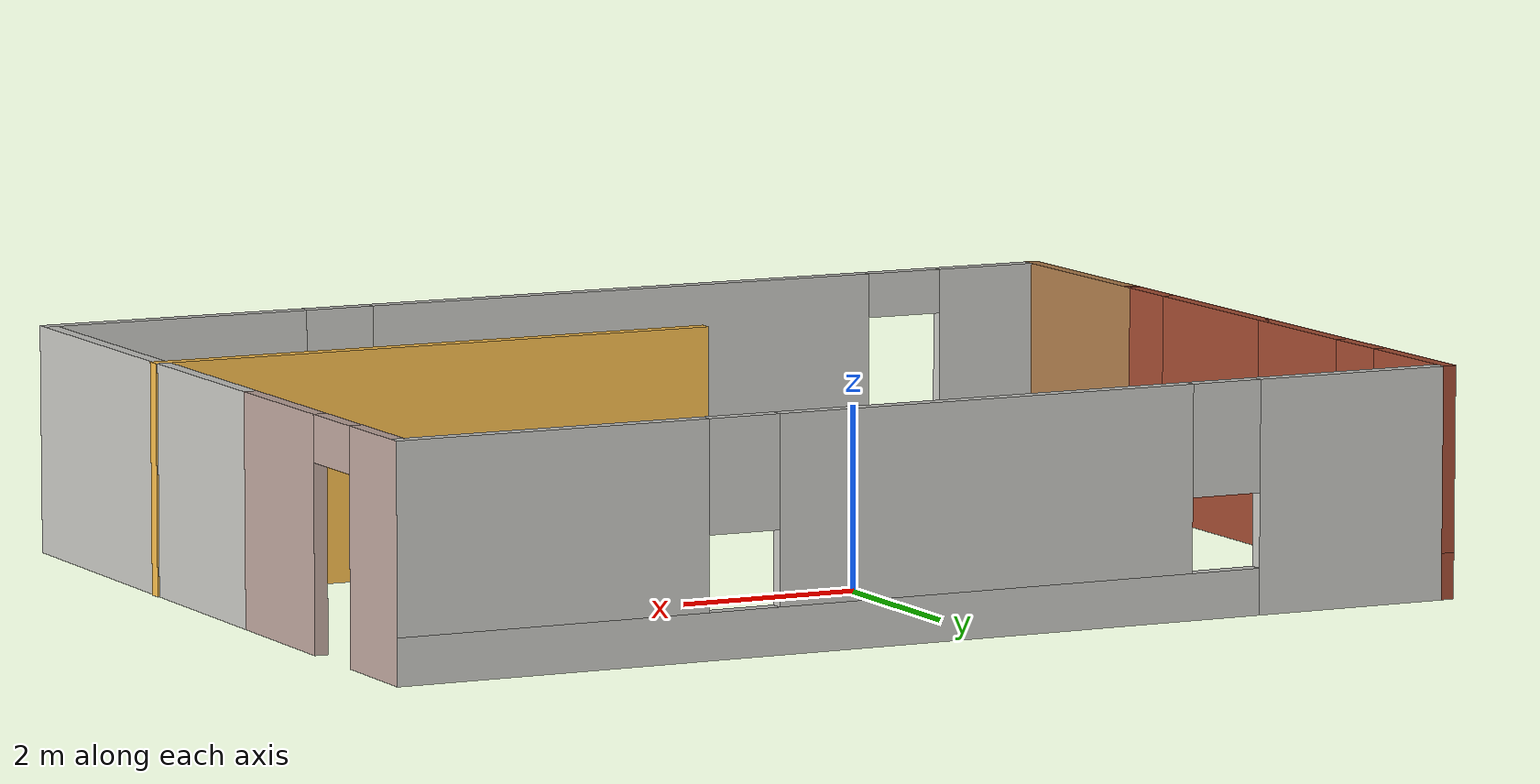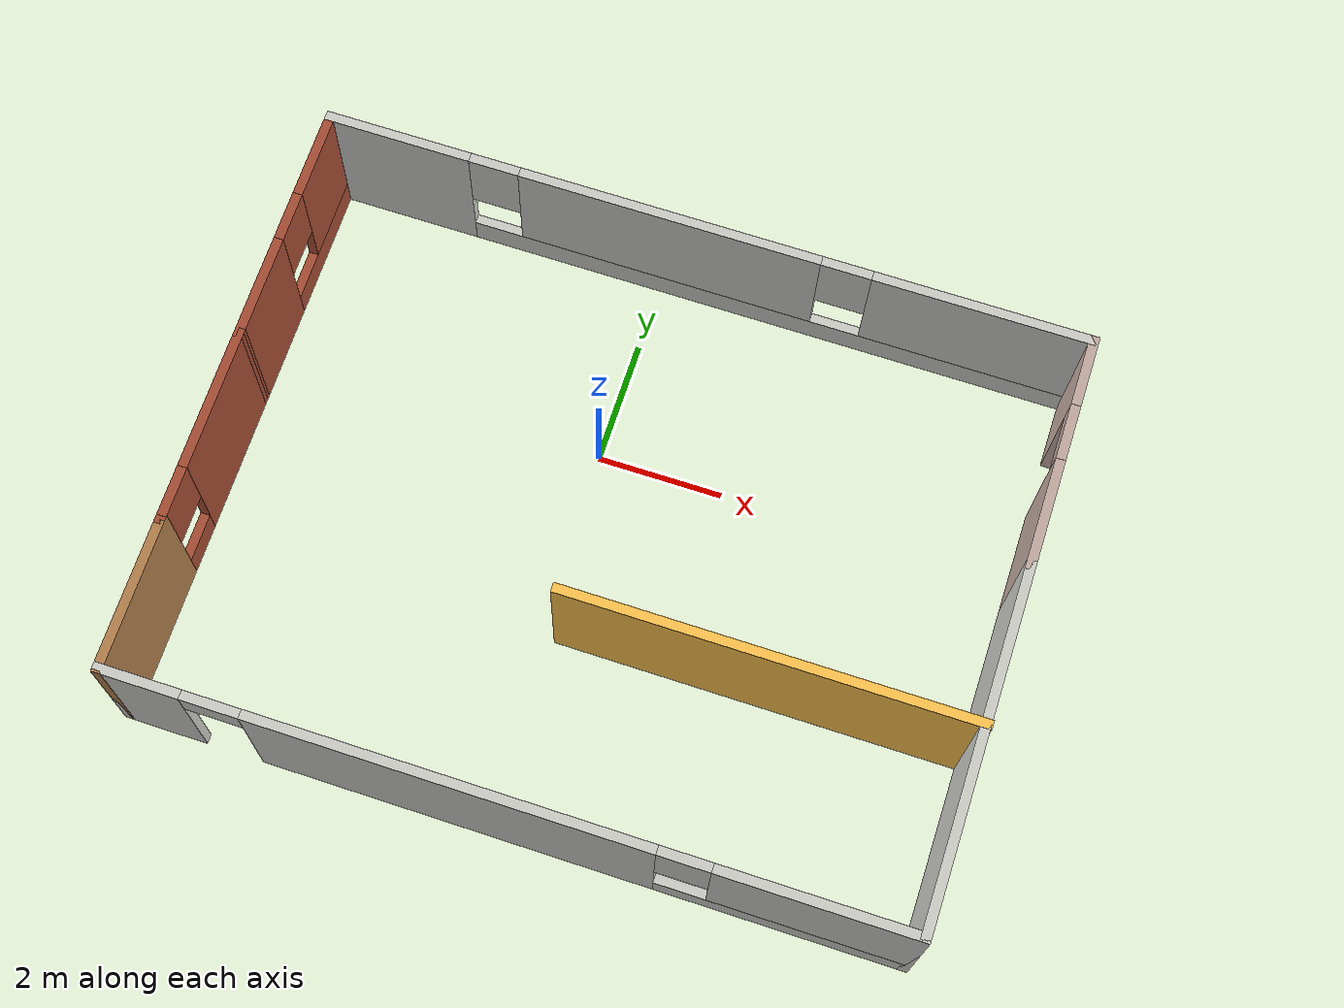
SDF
<?xml version='1.0'?>
<sdf version='1.6'>
  <model name='Ammar_world'>
    <pose frame=''>0.65 -1.5 0 0 -0 0</pose>
    <link name='Wall_10'>
      <pose frame=''>-6.06 2.725 0 0 -0 1.5708</pose>
      <visual name='Wall_10_Visual_0'>
        <pose frame=''>-1.1425 0 1.25 0 -0 0</pose>
        <geometry>
          <box>
            <size>1.715 0.15 2.5</size>
          </box>
        </geometry>
        <material>
          <script>
            <uri>file://media/materials/scripts/gazebo.material</uri>
            <name>Gazebo/Bricks</name>
          </script>
          <ambient>1 1 1 1</ambient>
        </material>
        <meta>
          <layer>0</layer>
        </meta>
      </visual>
      <collision name='Wall_10_Collision_0'>
        <geometry>
          <box>
            <size>1.715 0.15 2.5</size>
          </box>
        </geometry>
        <pose frame=''>-1.1425 0 1.25 0 -0 0</pose>
      </collision>
      <visual name='Wall_10_Visual_1'>
        <pose frame=''>0.8575 0 0.25 0 -0 0</pose>
        <geometry>
          <box>
            <size>2.285 0.15 0.5</size>
          </box>
        </geometry>
        <material>
          <script>
            <uri>file://media/materials/scripts/gazebo.material</uri>
            <name>Gazebo/Bricks</name>
          </script>
          <ambient>1 1 1 1</ambient>
        </material>
        <meta>
          <layer>0</layer>
        </meta>
      </visual>
      <collision name='Wall_10_Collision_1'>
        <geometry>
          <box>
            <size>2.285 0.15 0.5</size>
          </box>
        </geometry>
        <pose frame=''>0.8575 0 0.25 0 -0 0</pose>
      </collision>
      <visual name='Wall_10_Visual_2'>
        <pose frame=''>1.2575 0 1.5 0 -0 0</pose>
        <geometry>
          <box>
            <size>1.485 0.15 2</size>
          </box>
        </geometry>
        <material>
          <script>
            <uri>file://media/materials/scripts/gazebo.material</uri>
            <name>Gazebo/Bricks</name>
          </script>
          <ambient>1 1 1 1</ambient>
        </material>
        <meta>
          <layer>0</layer>
        </meta>
      </visual>
      <collision name='Wall_10_Collision_2'>
        <geometry>
          <box>
            <size>1.485 0.15 2</size>
          </box>
        </geometry>
        <pose frame=''>1.2575 0 1.5 0 -0 0</pose>
      </collision>
      <visual name='Wall_10_Visual_3'>
        <pose frame=''>0.115 0 1.9 0 -0 0</pose>
        <geometry>
          <box>
            <size>0.8 0.15 1.2</size>
          </box>
        </geometry>
        <material>
          <script>
            <uri>file://media/materials/scripts/gazebo.material</uri>
            <name>Gazebo/Bricks</name>
          </script>
          <ambient>1 1 1 1</ambient>
        </material>
        <meta>
          <layer>0</layer>
        </meta>
      </visual>
      <collision name='Wall_10_Collision_3'>
        <geometry>
          <box>
            <size>0.8 0.15 1.2</size>
          </box>
        </geometry>
        <pose frame=''>0.115 0 1.9 0 -0 0</pose>
      </collision>
    </link>
    <link name='Wall_11'>
      <pose frame=''>-0.01 4.65 0 0 -0 0</pose>
      <visual name='Wall_11_Visual_0'>
        <pose frame=''>-4.9475 0 1.25 0 -0 0</pose>
        <geometry>
          <box>
            <size>2.355 0.15 2.5</size>
          </box>
        </geometry>
        <material>
          <script>
            <uri>file://media/materials/scripts/gazebo.material</uri>
            <name>Gazebo/CeilingTiled</name>
          </script>
          <ambient>0.760784 0.662745 0.627451 1</ambient>
        </material>
        <meta>
          <layer>0</layer>
        </meta>
      </visual>
      <collision name='Wall_11_Collision_0'>
        <geometry>
          <box>
            <size>2.355 0.15 2.5</size>
          </box>
        </geometry>
        <pose frame=''>-4.9475 0 1.25 0 -0 0</pose>
      </collision>
      <visual name='Wall_11_Visual_1'>
        <pose frame=''>1.1775 0 0.25 0 -0 0</pose>
        <geometry>
          <box>
            <size>9.895 0.15 0.5</size>
          </box>
        </geometry>
        <material>
          <script>
            <uri>file://media/materials/scripts/gazebo.material</uri>
            <name>Gazebo/CeilingTiled</name>
          </script>
          <ambient>0.760784 0.662745 0.627451 1</ambient>
        </material>
        <meta>
          <layer>0</layer>
        </meta>
      </visual>
      <collision name='Wall_11_Collision_1'>
        <geometry>
          <box>
            <size>9.895 0.15 0.5</size>
          </box>
        </geometry>
        <pose frame=''>1.1775 0 0.25 0 -0 0</pose>
      </collision>
      <visual name='Wall_11_Visual_2'>
        <pose frame=''>-0.565 0 1.5 0 -0 0</pose>
        <geometry>
          <box>
            <size>4.81 0.15 2</size>
          </box>
        </geometry>
        <material>
          <script>
            <uri>file://media/materials/scripts/gazebo.material</uri>
            <name>Gazebo/CeilingTiled</name>
          </script>
          <ambient>0.760784 0.662745 0.627451 1</ambient>
        </material>
        <meta>
          <layer>0</layer>
        </meta>
      </visual>
      <collision name='Wall_11_Collision_2'>
        <geometry>
          <box>
            <size>4.81 0.15 2</size>
          </box>
        </geometry>
        <pose frame=''>-0.565 0 1.5 0 -0 0</pose>
      </collision>
      <visual name='Wall_11_Visual_3'>
        <pose frame=''>4.3825 0 1.5 0 -0 0</pose>
        <geometry>
          <box>
            <size>3.485 0.15 2</size>
          </box>
        </geometry>
        <material>
          <script>
            <uri>file://media/materials/scripts/gazebo.material</uri>
            <name>Gazebo/CeilingTiled</name>
          </script>
          <ambient>0.760784 0.662745 0.627451 1</ambient>
        </material>
        <meta>
          <layer>0</layer>
        </meta>
      </visual>
      <collision name='Wall_11_Collision_3'>
        <geometry>
          <box>
            <size>3.485 0.15 2</size>
          </box>
        </geometry>
        <pose frame=''>4.3825 0 1.5 0 -0 0</pose>
      </collision>
      <visual name='Wall_11_Visual_4'>
        <pose frame=''>-3.37 0 1.9 0 -0 0</pose>
        <geometry>
          <box>
            <size>0.8 0.15 1.2</size>
          </box>
        </geometry>
        <material>
          <script>
            <uri>file://media/materials/scripts/gazebo.material</uri>
            <name>Gazebo/CeilingTiled</name>
          </script>
          <ambient>0.760784 0.662745 0.627451 1</ambient>
        </material>
        <meta>
          <layer>0</layer>
        </meta>
      </visual>
      <collision name='Wall_11_Collision_4'>
        <geometry>
          <box>
            <size>0.8 0.15 1.2</size>
          </box>
        </geometry>
        <pose frame=''>-3.37 0 1.9 0 -0 0</pose>
      </collision>
      <visual name='Wall_11_Visual_5'>
        <pose frame=''>2.24 0 1.9 0 -0 0</pose>
        <geometry>
          <box>
            <size>0.8 0.15 1.2</size>
          </box>
        </geometry>
        <material>
          <script>
            <uri>file://media/materials/scripts/gazebo.material</uri>
            <name>Gazebo/CeilingTiled</name>
          </script>
          <ambient>0.760784 0.662745 0.627451 1</ambient>
        </material>
        <meta>
          <layer>0</layer>
        </meta>
      </visual>
      <collision name='Wall_11_Collision_5'>
        <geometry>
          <box>
            <size>0.8 0.15 1.2</size>
          </box>
        </geometry>
        <pose frame=''>2.24 0 1.9 0 -0 0</pose>
      </collision>
    </link>
    <link name='Wall_12'>
      <pose frame=''>6.04 2.8 0 0 0 -1.5708</pose>
      <visual name='Wall_12_Visual_0'>
        <pose frame=''>-1.3425 0 1.25 0 -0 0</pose>
        <geometry>
          <box>
            <size>1.165 0.15 2.5</size>
          </box>
        </geometry>
        <material>
          <script>
            <uri>file://media/materials/scripts/gazebo.material</uri>
            <name>Gazebo/Grey</name>
          </script>
          <ambient>0.760784 0.662745 0.627451 1</ambient>
        </material>
        <meta>
          <layer>0</layer>
        </meta>
      </visual>
      <collision name='Wall_12_Collision_0'>
        <geometry>
          <box>
            <size>1.165 0.15 2.5</size>
          </box>
        </geometry>
        <pose frame=''>-1.3425 0 1.25 0 -0 0</pose>
      </collision>
      <visual name='Wall_12_Visual_1'>
        <pose frame=''>1.0325 0 1.25 0 -0 0</pose>
        <geometry>
          <box>
            <size>1.785 0.15 2.5</size>
          </box>
        </geometry>
        <material>
          <script>
            <uri>file://media/materials/scripts/gazebo.material</uri>
            <name>Gazebo/Grey</name>
          </script>
          <ambient>0.760784 0.662745 0.627451 1</ambient>
        </material>
        <meta>
          <layer>0</layer>
        </meta>
      </visual>
      <collision name='Wall_12_Collision_1'>
        <geometry>
          <box>
            <size>1.785 0.15 2.5</size>
          </box>
        </geometry>
        <pose frame=''>1.0325 0 1.25 0 -0 0</pose>
      </collision>
      <visual name='Wall_12_Visual_2'>
        <pose frame=''>-0.31 0 2.25 0 -0 0</pose>
        <geometry>
          <box>
            <size>0.9 0.15 0.5</size>
          </box>
        </geometry>
        <material>
          <script>
            <uri>file://media/materials/scripts/gazebo.material</uri>
            <name>Gazebo/Grey</name>
          </script>
          <ambient>0.760784 0.662745 0.627451 1</ambient>
        </material>
        <meta>
          <layer>0</layer>
        </meta>
      </visual>
      <collision name='Wall_12_Collision_2'>
        <geometry>
          <box>
            <size>0.9 0.15 0.5</size>
          </box>
        </geometry>
        <pose frame=''>-0.31 0 2.25 0 -0 0</pose>
      </collision>
    </link>
    <link name='Wall_17'>
      <collision name='Wall_17_Collision'>
        <geometry>
          <box>
            <size>6.5 0.15 2.5</size>
          </box>
        </geometry>
        <pose frame=''>0 0 1.25 0 -0 0</pose>
      </collision>
      <visual name='Wall_17_Visual'>
        <pose frame=''>0 0 1.25 0 -0 0</pose>
        <geometry>
          <box>
            <size>6.5 0.15 2.5</size>
          </box>
        </geometry>
        <material>
          <script>
            <uri>file://media/materials/scripts/gazebo.material</uri>
            <name>Gazebo/Grey</name>
          </script>
          <ambient>1 0.764706 0.305882 1</ambient>
        </material>
        <meta>
          <layer>0</layer>
        </meta>
      </visual>
      <pose frame=''>2.885 -1.51 0 0 -0 3.14159</pose>
    </link>
    <link name='Wall_2'>
      <pose frame=''>-6.06 -0.75 0 0 0 -1.5708</pose>
      <visual name='Wall_2_Visual_0'>
        <pose frame=''>-0.4625 0 1.25 0 -0 0</pose>
        <geometry>
          <box>
            <size>2.325 0.15 2.5</size>
          </box>
        </geometry>
        <material>
          <script>
            <uri>file://media/materials/scripts/gazebo.material</uri>
            <name>Gazebo/Bricks</name>
          </script>
          <ambient>1 1 1 1</ambient>
        </material>
        <meta>
          <layer>0</layer>
        </meta>
      </visual>
      <collision name='Wall_2_Collision_0'>
        <geometry>
          <box>
            <size>2.325 0.15 2.5</size>
          </box>
        </geometry>
        <pose frame=''>-0.4625 0 1.25 0 -0 0</pose>
      </collision>
      <visual name='Wall_2_Visual_1'>
        <pose frame=''>1.1625 0 0.25 0 -0 0</pose>
        <geometry>
          <box>
            <size>0.925 0.15 0.5</size>
          </box>
        </geometry>
        <material>
          <script>
            <uri>file://media/materials/scripts/gazebo.material</uri>
            <name>Gazebo/Bricks</name>
          </script>
          <ambient>1 1 1 1</ambient>
        </material>
        <meta>
          <layer>0</layer>
        </meta>
      </visual>
      <collision name='Wall_2_Collision_1'>
        <geometry>
          <box>
            <size>0.925 0.15 0.5</size>
          </box>
        </geometry>
        <pose frame=''>1.1625 0 0.25 0 -0 0</pose>
      </collision>
      <visual name='Wall_2_Visual_2'>
        <pose frame=''>1.5625 0 1.5 0 -0 0</pose>
        <geometry>
          <box>
            <size>0.125 0.15 2</size>
          </box>
        </geometry>
        <material>
          <script>
            <uri>file://media/materials/scripts/gazebo.material</uri>
            <name>Gazebo/Bricks</name>
          </script>
          <ambient>1 1 1 1</ambient>
        </material>
        <meta>
          <layer>0</layer>
        </meta>
      </visual>
      <collision name='Wall_2_Collision_2'>
        <geometry>
          <box>
            <size>0.125 0.15 2</size>
          </box>
        </geometry>
        <pose frame=''>1.5625 0 1.5 0 -0 0</pose>
      </collision>
      <visual name='Wall_2_Visual_3'>
        <pose frame=''>1.1 0 1.9 0 -0 0</pose>
        <geometry>
          <box>
            <size>0.8 0.15 1.2</size>
          </box>
        </geometry>
        <material>
          <script>
            <uri>file://media/materials/scripts/gazebo.material</uri>
            <name>Gazebo/Bricks</name>
          </script>
          <ambient>1 1 1 1</ambient>
        </material>
        <meta>
          <layer>0</layer>
        </meta>
      </visual>
      <collision name='Wall_2_Collision_3'>
        <geometry>
          <box>
            <size>0.8 0.15 1.2</size>
          </box>
        </geometry>
        <pose frame=''>1.1 0 1.9 0 -0 0</pose>
      </collision>
    </link>
    <link name='Wall_4'>
      <collision name='Wall_4_Collision'>
        <geometry>
          <box>
            <size>2.5 0.15 2.5</size>
          </box>
        </geometry>
        <pose frame=''>0 0 1.25 0 -0 0</pose>
      </collision>
      <visual name='Wall_4_Visual'>
        <pose frame=''>0 0 1.25 0 -0 0</pose>
        <geometry>
          <box>
            <size>2.5 0.15 2.5</size>
          </box>
        </geometry>
        <material>
          <script>
            <uri>file://media/materials/scripts/gazebo.material</uri>
            <name>Gazebo/Wood</name>
          </script>
          <ambient>1 1 1 1</ambient>
        </material>
        <meta>
          <layer>0</layer>
        </meta>
      </visual>
      <pose frame=''>-6.06 -3.475 0 0 0 -1.5708</pose>
    </link>
    <link name='Wall_5'>
      <pose frame=''>-0.01 -4.65 0 0 -0 0</pose>
      <visual name='Wall_5_Visual_0'>
        <pose frame=''>-5.4625 0 1.25 0 -0 0</pose>
        <geometry>
          <box>
            <size>1.325 0.15 2.5</size>
          </box>
        </geometry>
        <material>
          <script>
            <uri>file://media/materials/scripts/gazebo.material</uri>
            <name>Gazebo/CeilingTiled</name>
          </script>
          <ambient>0.435294 0.796078 0.67451 1</ambient>
        </material>
        <meta>
          <layer>0</layer>
        </meta>
      </visual>
      <collision name='Wall_5_Collision_0'>
        <geometry>
          <box>
            <size>1.325 0.15 2.5</size>
          </box>
        </geometry>
        <pose frame=''>-5.4625 0 1.25 0 -0 0</pose>
      </collision>
      <visual name='Wall_5_Visual_1'>
        <pose frame=''>-0.835 0 1.25 0 -0 0</pose>
        <geometry>
          <box>
            <size>6.13 0.15 2.5</size>
          </box>
        </geometry>
        <material>
          <script>
            <uri>file://media/materials/scripts/gazebo.material</uri>
            <name>Gazebo/CeilingTiled</name>
          </script>
          <ambient>0.435294 0.796078 0.67451 1</ambient>
        </material>
        <meta>
          <layer>0</layer>
        </meta>
      </visual>
      <collision name='Wall_5_Collision_1'>
        <geometry>
          <box>
            <size>6.13 0.15 2.5</size>
          </box>
        </geometry>
        <pose frame=''>-0.835 0 1.25 0 -0 0</pose>
      </collision>
      <visual name='Wall_5_Visual_2'>
        <pose frame=''>4.1775 0 0.25 0 -0 0</pose>
        <geometry>
          <box>
            <size>3.895 0.15 0.5</size>
          </box>
        </geometry>
        <material>
          <script>
            <uri>file://media/materials/scripts/gazebo.material</uri>
            <name>Gazebo/CeilingTiled</name>
          </script>
          <ambient>0.435294 0.796078 0.67451 1</ambient>
        </material>
        <meta>
          <layer>0</layer>
        </meta>
      </visual>
      <collision name='Wall_5_Collision_2'>
        <geometry>
          <box>
            <size>3.895 0.15 0.5</size>
          </box>
        </geometry>
        <pose frame=''>4.1775 0 0.25 0 -0 0</pose>
      </collision>
      <visual name='Wall_5_Visual_3'>
        <pose frame=''>4.5775 0 1.5 0 -0 0</pose>
        <geometry>
          <box>
            <size>3.095 0.15 2</size>
          </box>
        </geometry>
        <material>
          <script>
            <uri>file://media/materials/scripts/gazebo.material</uri>
            <name>Gazebo/CeilingTiled</name>
          </script>
          <ambient>0.435294 0.796078 0.67451 1</ambient>
        </material>
        <meta>
          <layer>0</layer>
        </meta>
      </visual>
      <collision name='Wall_5_Collision_3'>
        <geometry>
          <box>
            <size>3.095 0.15 2</size>
          </box>
        </geometry>
        <pose frame=''>4.5775 0 1.5 0 -0 0</pose>
      </collision>
      <visual name='Wall_5_Visual_4'>
        <pose frame=''>2.63 0 1.9 0 -0 0</pose>
        <geometry>
          <box>
            <size>0.8 0.15 1.2</size>
          </box>
        </geometry>
        <material>
          <script>
            <uri>file://media/materials/scripts/gazebo.material</uri>
            <name>Gazebo/CeilingTiled</name>
          </script>
          <ambient>0.435294 0.796078 0.67451 1</ambient>
        </material>
        <meta>
          <layer>0</layer>
        </meta>
      </visual>
      <collision name='Wall_5_Collision_4'>
        <geometry>
          <box>
            <size>0.8 0.15 1.2</size>
          </box>
        </geometry>
        <pose frame=''>2.63 0 1.9 0 -0 0</pose>
      </collision>
      <visual name='Wall_5_Visual_5'>
        <pose frame=''>-4.35 0 2.25 0 -0 0</pose>
        <geometry>
          <box>
            <size>0.9 0.15 0.5</size>
          </box>
        </geometry>
        <material>
          <script>
            <uri>file://media/materials/scripts/gazebo.material</uri>
            <name>Gazebo/CeilingTiled</name>
          </script>
          <ambient>0.435294 0.796078 0.67451 1</ambient>
        </material>
        <meta>
          <layer>0</layer>
        </meta>
      </visual>
      <collision name='Wall_5_Collision_5'>
        <geometry>
          <box>
            <size>0.9 0.15 0.5</size>
          </box>
        </geometry>
        <pose frame=''>-4.35 0 2.25 0 -0 0</pose>
      </collision>
    </link>
    <link name='Wall_6'>
      <collision name='Wall_6_Collision'>
        <geometry>
          <box>
            <size>5.75 0.15 2.5</size>
          </box>
        </geometry>
        <pose frame=''>0 0 1.25 0 -0 0</pose>
      </collision>
      <visual name='Wall_6_Visual'>
        <pose frame=''>0 0 1.25 0 -0 0</pose>
        <geometry>
          <box>
            <size>5.75 0.15 2.5</size>
          </box>
        </geometry>
        <material>
          <script>
            <uri>file://media/materials/scripts/gazebo.material</uri>
            <name>Gazebo/CeilingTiled</name>
          </script>
          <ambient>0.435294 0.796078 0.67451 1</ambient>
        </material>
        <meta>
          <layer>0</layer>
        </meta>
      </visual>
      <pose frame=''>6.04 -1.85 0 0 -0 1.5708</pose>
    </link>
    <static>1</static>
  </model>
</sdf>
